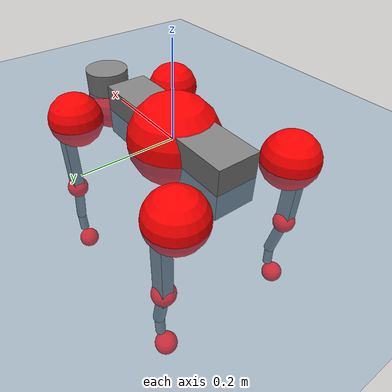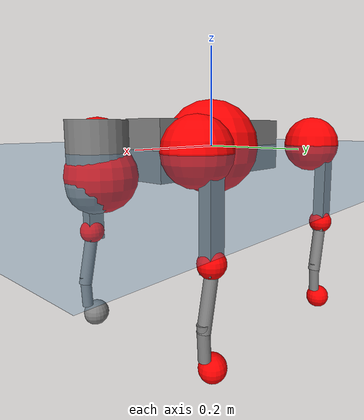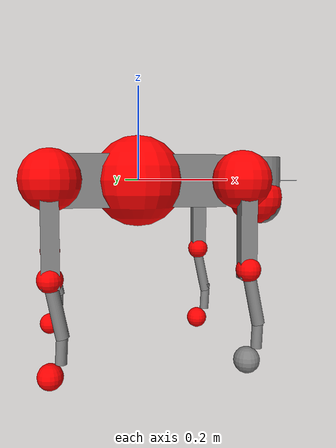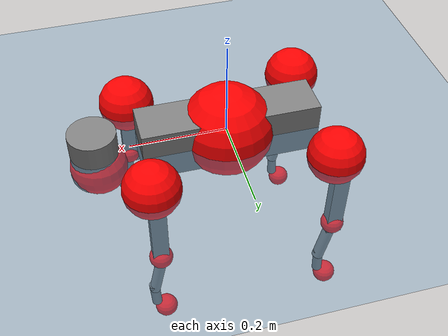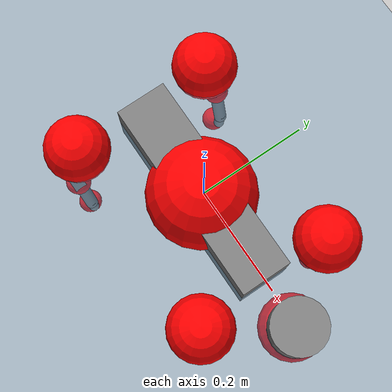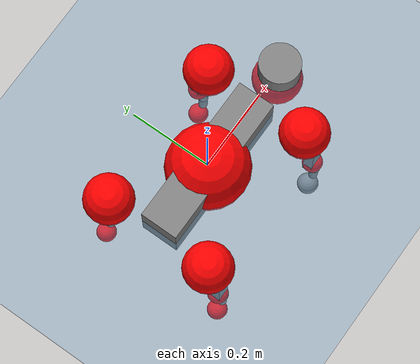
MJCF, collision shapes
<mujoco model="go2">
  <compiler angle="radian" assetdir="assets" balanceinertia="true" inertiafromgeom="false"/>

  <option timestep="0.005" density="1.2" viscosity="2e-05"/>

  <size nkey="1"/>

  <visual>
    <quality shadowsize="8192"/>
    <map shadowclip="0.5"/>
  </visual>

  <default>
    <default class="/">
      <geom contype="0" conaffinity="0" group="1" solref="-1000 -80"/>
      <site size="0.01 0.005 0.005" group="5"/>
      <general forcelimited="true" biastype="affine" gainprm="20" biasprm="0 -20 -0.5"/>
      <default class="go2">
        <joint armature="0.01" damping="0.01" frictionloss="0.2"/>
        <geom condim="1" margin="0.001"/>
        <default class="visual">
          <geom type="mesh" group="2"/>
        </default>
        <default class="collision">
          <geom group="3"/>
          <default class="foot">
            <geom size="0.022 0 0" condim="6" priority="1" friction="0.8 0.02 0.01" solimp="0.015 1 0.022"/>
          </default>
        </default>
        <default class="reward_collision_sphere">
          <geom group="5" rgba="1 0 0 1"/>
        </default>
      </default>
    </default>
  </default>

  <asset>
    <texture type="skybox" colorspace="auto" name="//unnamed_texture_0" builtin="gradient" rgb1="0.95 0.95 0.95" rgb2="0.95 0.95 0.95" width="100" height="600"/>
    <texture type="2d" colorspace="auto" name="texplane" builtin="checker" rgb1="0.345 0.575 0.748" rgb2="0.345 0.575 0.748" markrgb="1 1 1" width="512" height="512"/>
    <material name="MatPlane" class="/" texture="texplane" texuniform="true" texrepeat="2 2" specular="0.9"/>
    <material name="metal" class="/" rgba="0.9 0.95 0.95 1"/>
    <material name="black" class="/" rgba="0 0 0 1"/>
    <material name="white" class="/"/>
    <material name="gray" class="/" rgba="0.671705 0.692426 0.77427 1"/>
    <mesh name="base_0" class="/" file="base_0.obj"/>
    <mesh name="base_1" class="/" file="base_1.obj"/>
    <mesh name="base_2" class="/" file="base_2.obj"/>
    <mesh name="base_3" class="/" file="base_3.obj"/>
    <mesh name="base_4" class="/" file="base_4.obj"/>
    <mesh name="hip_0" class="/" file="hip_0.obj"/>
    <mesh name="hip_1" class="/" file="hip_1.obj"/>
    <mesh name="thigh_0" class="/" file="thigh_0.obj"/>
    <mesh name="thigh_1" class="/" file="thigh_1.obj"/>
    <mesh name="thigh_mirror_0" class="/" file="thigh_mirror_0.obj"/>
    <mesh name="thigh_mirror_1" class="/" file="thigh_mirror_1.obj"/>
    <mesh name="calf_0" class="/" file="calf_0.obj"/>
    <mesh name="calf_1" class="/" file="calf_1.obj"/>
    <mesh name="calf_mirror_0" class="/" file="calf_mirror_0.obj"/>
    <mesh name="calf_mirror_1" class="/" file="calf_mirror_1.obj"/>
    <mesh name="foot" class="/" file="foot.obj"/>
  </asset>

  <worldbody>
    <geom name="floor" class="/" size="100 100 0.125" type="plane" group="0" material="MatPlane"/>
    <light name="toplight_shadow" class="/" pos="0 0 5" dir="0.0990148 0.0990148 -0.990148" type="directional" ambient="0.04 0.04 0.04" diffuse="0.55 0.55 0.55" specular="0.12 0.12 0.12"/>
    <light name="toplight_fill" class="/" pos="0 0 5" dir="0.0990148 0.0990148 -0.990148" type="directional" castshadow="false" ambient="0.04 0.04 0.04" diffuse="0.3 0.3 0.3" specular="0.08 0.08 0.08"/>
    <body name="trunk" childclass="go2" pos="-0.00194769 -0.0028256 -0.0013664" quat="0.999999 -0.000836028 3.59045e-05 -0.0010877">
      <inertial pos="0.0185311 0.000653354 -0.00474737" quat="0.00557333 0.714287 -0.000138186 0.699831" mass="6.42077" diaginertia="0.0864267 0.17817 0.0101507"/>
      <joint name="//unnamed_joint_0" type="free" armature="0" damping="0" frictionloss="0"/>
      <geom name="//unnamed_geom_1" class="visual" material="black" mesh="base_0"/>
      <geom name="//unnamed_geom_2" class="visual" material="black" mesh="base_1"/>
      <geom name="//unnamed_geom_3" class="visual" material="black" mesh="base_2"/>
      <geom name="//unnamed_geom_4" class="visual" material="white" mesh="base_3"/>
      <geom name="//unnamed_geom_5" class="visual" material="gray" mesh="base_4"/>
      <geom name="trunk_1" class="collision" size="0.183343 0.0455676 0.0555584" type="box"/>
      <geom name="trunk_2" class="collision" size="0.0487354 0.0438619" pos="0.273475 0 0.00834247" type="cylinder"/>
      <geom name="trunk_3" class="collision" size="0.0458113" pos="0.281152 0 -0.0500548"/>
      <geom name="//unnamed_geom_9" class="reward_collision_sphere" size="0.0974709"/>
      <geom name="//unnamed_geom_10" class="reward_collision_sphere" size="0.0584825" pos="0.268677 0 -0.0375411"/>
      <site name="imu" pos="-0.024383 0.00556877 0.0343571" size="0.00974709"/>
      <camera name="track" pos="0 -2.26063 0" quat="0.707107 0.707107 0 0" mode="trackcom"/>
      <camera name="ego_camera" pos="0.299383 0 0.0375411" quat="-0.5 -0.5 0.5 0.5"/>
      <body name="FL_hip" pos="0.182671 0.0500562 0.00326646" quat="1 -0.000856695 0.000263807 -7.99731e-05">
        <inertial pos="-0.00677188 0.000274126 -0.00253816" quat="0.49533 0.498529 0.505727 0.500357" mass="0.656125" diaginertia="0.000750336 0.00110325 0.000206092"/>
        <joint name="FL_hip_joint" pos="0 0 0" axis="0.999966 0.00687927 0.00459189" range="-1.03475 0.997413" armature="0.0111249" damping="0" frictionloss="0.210884"/>
        <geom name="//unnamed_geom_11" class="visual" material="metal" mesh="hip_0"/>
        <geom name="//unnamed_geom_12" class="visual" material="gray" mesh="hip_1"/>
        <geom name="//unnamed_geom_13" class="collision" size="0.0448366 0.0194942" pos="0 0.0904254 0" quat="0.707107 0.707107 0 0" type="cylinder"/>
        <geom name="//unnamed_geom_14" class="reward_collision_sphere" size="0.0584825" pos="0 0.0791222 0"/>
        <body name="FL_thigh" pos="-0.00114784 0.107711 0.00314622" quat="1 -3.03091e-05 3.85574e-05 0.000309182">
          <inertial pos="-0.00169619 -0.0261515 -0.0248474" quat="0.827579 0.0861449 -0.0217694 0.554273" mass="1.07353" diaginertia="0.00492848 0.0108581 0.000351358"/>
          <joint name="FL_thigh_joint" pos="0 0 0" axis="-0.0100342 0.999899 -0.0100658" stiffness="0.00476824" range="-1.62261 3.5468" armature="0.0111741" damping="0" frictionloss="0.215711"/>
          <geom name="//unnamed_geom_15" class="visual" material="metal" mesh="thigh_0"/>
          <geom name="//unnamed_geom_16" class="visual" material="gray" mesh="thigh_1"/>
          <geom name="//unnamed_geom_17" class="collision" size="0.103806 0.0119402 0.01657" pos="0 0 -0.0888474" quat="0.707107 0 0.707107 0" type="box"/>
          <body name="FL_calf" pos="-0.000723452 -0.000360942 -0.177361" quat="0.999999 0.000860696 0.000715537 0.000700501">
            <inertial pos="0.00859496 0.00185959 -0.120638" quat="0.708855 0.0127255 0.000383621 0.705239" mass="0.224265" diaginertia="0.0012007 0.00277431 2.0723e-05"/>
            <joint name="FL_calf_joint" pos="0 0 0" axis="-0.000594332 1 0.000682556" stiffness="0.00180828" range="-2.70002 -0.891162" armature="0.00845262" damping="0.00695333" frictionloss="0.205003"/>
            <geom name="//unnamed_geom_18" class="visual" material="gray" mesh="calf_0"/>
            <geom name="//unnamed_geom_19" class="visual" material="black" mesh="calf_1"/>
            <geom name="FL_calf0" class="collision" size="0.0116965 0.0584825" pos="0.00767649 0 -0.0500548" quat="0.994493 0 -0.104807 0" type="cylinder"/>
            <geom name="//unnamed_geom_21" class="collision" size="0.0107218 0.031678" pos="0.0191912 0 -0.123469" quat="0.999688 0 0.0249974 0" type="cylinder"/>
            <geom name="//unnamed_geom_22" class="visual" pos="0 0 -0.177695" quat="1 0 0 0" material="black" mesh="foot"/>
            <geom name="FL_foot" class="foot" size="0.0194218" pos="-0.00191912 0 -0.177695"/>
            <geom name="//unnamed_geom_24" class="reward_collision_sphere" size="0.0243677"/>
            <geom name="//unnamed_geom_25" class="reward_collision_sphere" size="0.0243677" pos="-0.00191912 0 -0.177695"/>
            <site name="FL_foot" class="foot" pos="-0.00191912 0 -0.177695" size="0.00974709"/>
          </body>
        </body>
      </body>
      <body name="FR_hip" pos="0.186491 -0.0502384 0.00161078" quat="1 -0.000220856 -0.000174369 -0.000564425">
        <inertial pos="-0.00236819 -0.00209632 -0.000120506" quat="0.498846 0.505005 0.497785 0.49833" mass="0.657378" diaginertia="0.000753353 0.00114439 0.000193979"/>
        <joint name="FR_hip_joint" pos="0 0 0" axis="0.999993 0.000299634 0.00371431" range="-0.999151 1.05154" armature="0.00895731" damping="0.00995198" frictionloss="0.213176"/>
        <geom name="//unnamed_geom_26" class="visual" pos="0 2.57924e-09 1.10629e-07" quat="4.63268e-05 1 0 0" material="metal" mesh="hip_0"/>
        <geom name="//unnamed_geom_27" class="visual" pos="0 4.18125e-09 -2.73627e-07" quat="4.63268e-05 1 0 0" material="gray" mesh="hip_1"/>
        <geom name="//unnamed_geom_28" class="collision" size="0.0448366 0.0194942" pos="0 -0.0904254 0" quat="0.707107 0.707107 0 0" type="cylinder"/>
        <geom name="//unnamed_geom_29" class="reward_collision_sphere" size="0.0584825" pos="0 -0.0791222 0"/>
        <body name="FR_thigh" pos="9.85e-05 -0.107752 0.00272798" quat="0.999999 0.000399353 -0.00105262 0.000381599">
          <inertial pos="-0.00629702 0.0236526 -0.027554" quat="0.548192 -0.0174869 0.0864796 0.831685" mass="1.03298" diaginertia="0.0048052 0.0103982 0.00033812"/>
          <joint name="FR_thigh_joint" pos="0 0 0" axis="0.00877124 -0.99996 -0.00189727" stiffness="0.00407666" range="-3.49979 1.54066" armature="0.00974218" damping="0.0173524" frictionloss="0.211398"/>
          <geom name="//unnamed_geom_30" class="visual" material="metal" mesh="thigh_mirror_0"/>
          <geom name="//unnamed_geom_31" class="visual" material="gray" mesh="thigh_mirror_1"/>
          <geom name="//unnamed_geom_32" class="collision" size="0.103806 0.0119402 0.01657" pos="0 0 -0.0888474" quat="0.707107 0 0.707107 0" type="box"/>
          <body name="FR_calf" pos="0.00258541 -0.00218344 -0.175969" quat="1 1.5227e-06 -2.65374e-05 -2.07301e-05">
            <inertial pos="0.00833345 0.00112085 -0.118624" quat="0.701999 -0.000490761 0.00378036 0.712168" mass="0.231419" diaginertia="0.00129425 0.00269278 2.20928e-05"/>
            <joint name="FR_calf_joint" pos="0 0 0" axis="-0.00139197 -0.999965 0.00824722" range="0.835537 2.73584" armature="0.00942732" damping="0.022021" frictionloss="0.194342"/>
            <geom name="//unnamed_geom_33" class="visual" material="gray" mesh="calf_mirror_0"/>
            <geom name="//unnamed_geom_34" class="visual" material="black" mesh="calf_mirror_1"/>
            <geom name="FR_calf0" class="collision" size="0.0126712 0.0584825" pos="0.00959562 0 -0.0500548" quat="0.995004 0 -0.0998334 0" type="cylinder"/>
            <geom name="//unnamed_geom_36" class="collision" size="0.0107218 0.031678" pos="0.0191912 0 -0.123469" quat="0.999688 0 0.0249974 0" type="cylinder"/>
            <geom name="//unnamed_geom_37" class="visual" pos="0 0 -0.177695" quat="1 0 0 0" material="black" mesh="foot"/>
            <geom name="FR_foot" class="foot" size="0.0256145" pos="-0.00191912 0 -0.177695"/>
            <geom name="//unnamed_geom_39" class="reward_collision_sphere" size="0.0243677"/>
            <geom name="//unnamed_geom_40" class="reward_collision_sphere" size="0.0243677" pos="-0.00191912 0 -0.177695"/>
            <site name="FR_foot" class="foot" pos="-0.00191912 0 -0.177695" size="0.00974709"/>
          </body>
        </body>
      </body>
      <body name="RL_hip" pos="-0.186904 0.0539158 0.00292934" quat="1 -0.000130383 -0.000158898 0.000436617">
        <inertial pos="0.00747061 0.00343472 -0.00108093" quat="0.505527 0.498661 0.496776 0.498992" mass="0.621489" diaginertia="0.000714405 0.00113182 0.000192726"/>
        <joint name="RL_hip_joint" pos="0 0 0" axis="-0.999772 -0.011898 -0.0177493" stiffness="0.0122023" range="-1.03112 1.02402" armature="0.00978678" damping="0.010807" frictionloss="0.207395"/>
        <geom name="//unnamed_geom_41" class="visual" pos="-1.09169e-09 0 -2.13996e-07" quat="4.63268e-05 0 1 0" material="metal" mesh="hip_0"/>
        <geom name="//unnamed_geom_42" class="visual" pos="-1.76976e-09 0 -1.89784e-07" quat="4.63268e-05 0 1 0" material="gray" mesh="hip_1"/>
        <geom name="//unnamed_geom_43" class="collision" size="0.0448366 0.0194942" pos="0 0.0904254 0" quat="0.707107 0.707107 0 0" type="cylinder"/>
        <geom name="//unnamed_geom_44" class="reward_collision_sphere" size="0.0584825" pos="0 0.0791222 0"/>
        <body name="RL_thigh" pos="-0.00168875 0.109786 0.00269043" quat="1 -0.000573469 0.000580606 -0.000517823">
          <inertial pos="-0.00372809 -0.0241052 -0.0265216" quat="0.829445 0.073093 -0.0245684 0.553241" mass="1.03301" diaginertia="0.00486783 0.0104192 0.000359366"/>
          <joint name="RL_thigh_joint" pos="0 0 0" axis="-0.0125796 0.999901 0.00628176" range="-0.502569 4.55846" armature="0.0085241" damping="0" frictionloss="0.185334"/>
          <geom name="//unnamed_geom_45" class="visual" material="metal" mesh="thigh_0"/>
          <geom name="//unnamed_geom_46" class="visual" material="gray" mesh="thigh_1"/>
          <geom name="//unnamed_geom_47" class="collision" size="0.103806 0.0119402 0.01657" pos="0 0 -0.0888474" quat="0.707107 0 0.707107 0" type="box"/>
          <body name="RL_calf" pos="0.000129948 -0.00149537 -0.174914" quat="1 0.000117769 -2.63863e-05 -0.000347495">
            <inertial pos="0.00602283 -0.000569644 -0.115448" quat="0.710259 0.00271746 -0.00478191 0.703919" mass="0.223956" diaginertia="0.00121486 0.00271151 2.17762e-05"/>
            <joint name="RL_calf_joint" pos="0 0 0" axis="-0.00470714 0.999986 0.00220198" range="-2.7254 -0.837506" armature="0.00898786" damping="0" frictionloss="0.194245"/>
            <geom name="//unnamed_geom_48" class="visual" material="gray" mesh="calf_0"/>
            <geom name="//unnamed_geom_49" class="visual" material="black" mesh="calf_1"/>
            <geom name="RL_calf0" class="collision" size="0.0126712 0.0584825" pos="0.00959562 0 -0.0500548" quat="0.995004 0 -0.0998334 0" type="cylinder"/>
            <geom name="//unnamed_geom_51" class="collision" size="0.0107218 0.031678" pos="0.0191912 0 -0.123469" quat="0.999688 0 0.0249974 0" type="cylinder"/>
            <geom name="//unnamed_geom_52" class="visual" pos="0 0 -0.177695" quat="1 0 0 0" material="black" mesh="foot"/>
            <geom name="RL_foot" class="foot" size="0.0217045" pos="-0.00191912 0 -0.177695"/>
            <geom name="//unnamed_geom_54" class="reward_collision_sphere" size="0.0243677"/>
            <geom name="//unnamed_geom_55" class="reward_collision_sphere" size="0.0243677" pos="-0.00191912 0 -0.177695"/>
            <site name="RL_foot" class="foot" pos="-0.00191912 0 -0.177695" size="0.00974709"/>
          </body>
        </body>
      </body>
      <body name="RR_hip" pos="-0.185223 -0.0537798 0.00187512" quat="0.999999 -6.75784e-05 -0.00137882 0.000729894">
        <inertial pos="0.00556645 0.000645359 -0.000835618" quat="0.500143 0.50622 0.493484 0.500072" mass="0.626995" diaginertia="0.000739282 0.00113265 0.000189742"/>
        <joint name="RR_hip_joint" pos="0 0 0" axis="-0.999979 -0.00218009 -0.00611979" stiffness="0.00657038" range="-1.06414 1.04415" armature="0.0108466" damping="0.0144905" frictionloss="0.170086"/>
        <geom name="//unnamed_geom_56" class="visual" pos="1.0976e-09 2.57924e-09 -3.24625e-07" quat="2.14617e-09 4.63268e-05 4.63268e-05 -1" material="metal" mesh="hip_0"/>
        <geom name="//unnamed_geom_57" class="visual" pos="1.75513e-09 4.18125e-09 8.38433e-08" quat="2.14617e-09 4.63268e-05 4.63268e-05 -1" material="gray" mesh="hip_1"/>
        <geom name="//unnamed_geom_58" class="collision" size="0.0448366 0.0194942" pos="0 -0.0904254 0" quat="0.707107 0.707107 0 0" type="cylinder"/>
        <geom name="//unnamed_geom_59" class="reward_collision_sphere" size="0.0584825" pos="0 -0.0791222 0"/>
        <body name="RR_thigh" pos="-0.0013762 -0.109246 -0.00256052" quat="0.999999 -0.00067915 0.000121902 -0.000827207">
          <inertial pos="-0.00330643 0.0232861 -0.0277109" quat="0.550303 -0.0196735 0.0857461 0.830318" mass="1.02383" diaginertia="0.00467366 0.010553 0.000339532"/>
          <joint name="RR_thigh_joint" pos="0 0 0" axis="0.00209895 -0.999997 -0.0010401" range="-4.58371 0.577793" armature="0.0108817" damping="0.0136338" frictionloss="0.193687"/>
          <geom name="//unnamed_geom_60" class="visual" material="metal" mesh="thigh_mirror_0"/>
          <geom name="//unnamed_geom_61" class="visual" material="gray" mesh="thigh_mirror_1"/>
          <geom name="//unnamed_geom_62" class="collision" size="0.103806 0.0119402 0.01657" pos="0 0 -0.0888474" quat="0.707107 0 0.707107 0" type="box"/>
          <body name="RR_calf" pos="-0.00120349 0.00239277 -0.177157" quat="1 -0.000208024 0.000554529 0.000373295">
            <inertial pos="0.00721552 0.000245473 -0.115772" quat="0.706971 -0.00469037 -0.00320845 0.70722" mass="0.222688" diaginertia="0.00122104 0.00254641 2.17245e-05"/>
            <joint name="RR_calf_joint" pos="0 0 0" axis="-0.0109498 -0.99994 0.000976252" stiffness="0.000499184" range="0.894275 2.74709" armature="0.00824337" damping="0.00995889" frictionloss="0.196641"/>
            <geom name="//unnamed_geom_63" class="visual" material="gray" mesh="calf_mirror_0"/>
            <geom name="//unnamed_geom_64" class="visual" material="black" mesh="calf_mirror_1"/>
            <geom name="RR_calf0" class="collision" size="0.0126712 0.0584825" pos="0.00959562 0 -0.0500548" quat="0.995004 0 -0.0998334 0" type="cylinder"/>
            <geom name="//unnamed_geom_66" class="collision" size="0.0107218 0.031678" pos="0.0191912 0 -0.123469" quat="0.999688 0 0.0249974 0" type="cylinder"/>
            <geom name="//unnamed_geom_67" class="visual" pos="0 0 -0.177695" quat="1 0 0 0" material="black" mesh="foot"/>
            <geom name="RR_foot" class="foot" size="0.0229722" pos="-0.00191912 0 -0.177695"/>
            <geom name="//unnamed_geom_69" class="reward_collision_sphere" size="0.0243677"/>
            <geom name="//unnamed_geom_70" class="reward_collision_sphere" size="0.0243677" pos="-0.00191912 0 -0.177695"/>
            <site name="RR_foot" class="foot" pos="-0.00191912 0 -0.177695" size="0.00974709"/>
          </body>
        </body>
      </body>
    </body>
  </worldbody>

  <contact>
    <pair class="/" geom1="floor" geom2="FL_foot" name="//unnamed_contact_0"/>
    <pair class="/" geom1="floor" geom2="FR_foot" name="//unnamed_contact_1"/>
    <pair class="/" geom1="floor" geom2="RL_foot" name="//unnamed_contact_2"/>
    <pair class="/" geom1="floor" geom2="RR_foot" name="//unnamed_contact_3"/>
  </contact>

  <actuator>
    <general name="FL_hip" class="/" joint="FL_hip_joint" forcerange="-23.7974 23.7974" gainprm="19.5626" biasprm="0 -19.5626 -0.489011"/>
    <general name="FL_thigh" class="/" joint="FL_thigh_joint" forcerange="-21.1658 21.1658" gainprm="19.5626" biasprm="0 -19.5626 -0.489011"/>
    <general name="FL_calf" class="/" joint="FL_calf_joint" forcerange="-43.7292 43.7292" gainprm="19.5626" biasprm="0 -19.5626 -0.489011"/>
    <general name="FR_hip" class="/" joint="FR_hip_joint" forcerange="-24.2987 24.2987" gainprm="19.5626" biasprm="0 -19.5626 -0.489011"/>
    <general name="FR_thigh" class="/" joint="FR_thigh_joint" forcerange="-23.4232 23.4232" gainprm="19.5626" biasprm="0 -19.5626 -0.489011"/>
    <general name="FR_calf" class="/" joint="FR_calf_joint" forcerange="-39.3245 39.3245" gainprm="19.5626" biasprm="0 -19.5626 -0.489011"/>
    <general name="RL_hip" class="/" joint="RL_hip_joint" forcerange="-23.9878 23.9878" gainprm="19.5626" biasprm="0 -19.5626 -0.489011"/>
    <general name="RL_thigh" class="/" joint="RL_thigh_joint" forcerange="-23.9961 23.9961" gainprm="19.5626" biasprm="0 -19.5626 -0.489011"/>
    <general name="RL_calf" class="/" joint="RL_calf_joint" forcerange="-42.0934 42.0934" gainprm="19.5626" biasprm="0 -19.5626 -0.489011"/>
    <general name="RR_hip" class="/" joint="RR_hip_joint" forcerange="-22.2231 22.2231" gainprm="19.5626" biasprm="0 -19.5626 -0.489011"/>
    <general name="RR_thigh" class="/" joint="RR_thigh_joint" forcerange="-22.6036 22.6036" gainprm="19.5626" biasprm="0 -19.5626 -0.489011"/>
    <general name="RR_calf" class="/" joint="RR_calf_joint" forcerange="-48.0875 48.0875" gainprm="19.5626" biasprm="0 -19.5626 -0.489011"/>
  </actuator>

  <sensor>
    <gyro site="imu" name="imu_angular_velocity"/>
    <velocimeter site="imu" name="imu_linear_velocity"/>
    <framelinvel objtype="site" objname="FL_foot" name="FL_foot_global_linear_velocity"/>
    <framelinvel objtype="site" objname="FR_foot" name="FR_foot_global_linear_velocity"/>
    <framelinvel objtype="site" objname="RL_foot" name="RL_foot_global_linear_velocity"/>
    <framelinvel objtype="site" objname="RR_foot" name="RR_foot_global_linear_velocity"/>
  </sensor>

  <keyframe>
    <key name="home" qpos="0 0 0.325 1 0 0 0 0.1 0.8 -1.5 -0.1 -0.8 1.5 -0.1 0.8 -1.5 0.1 -0.8 1.5"/>
  </keyframe>
</mujoco>
